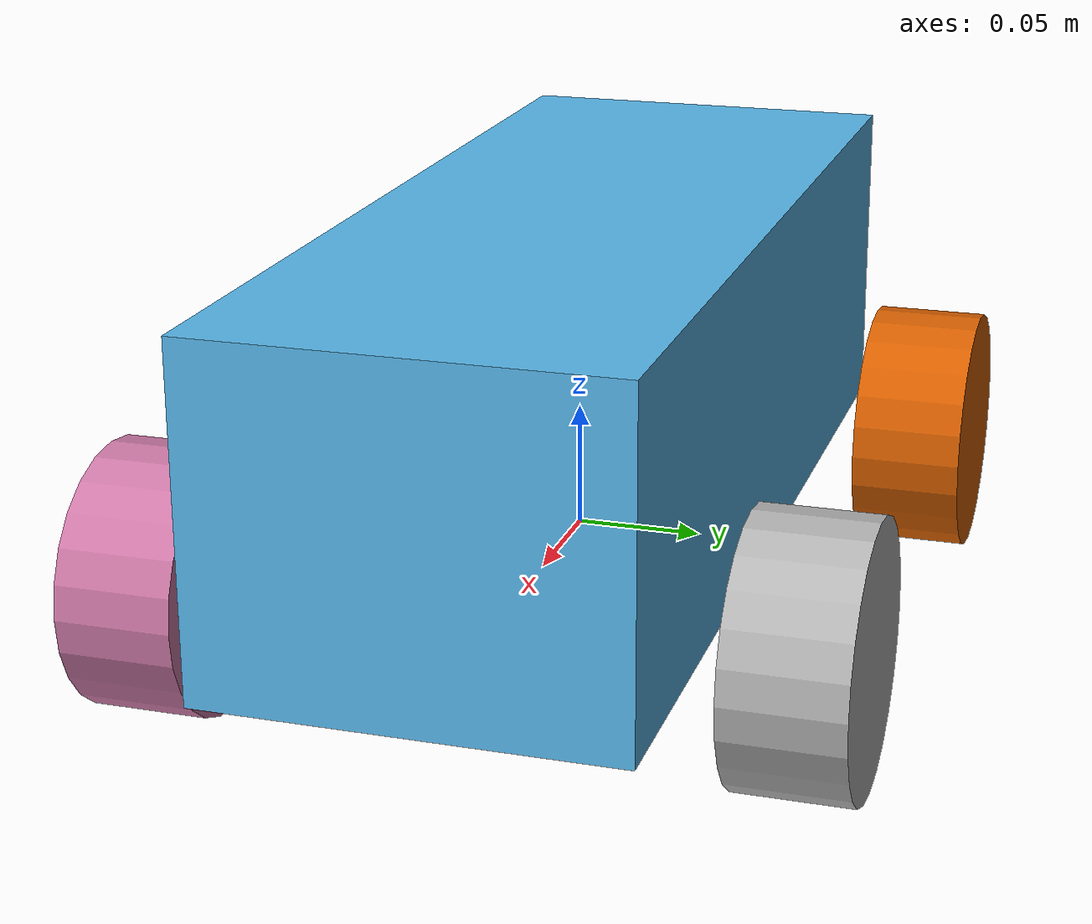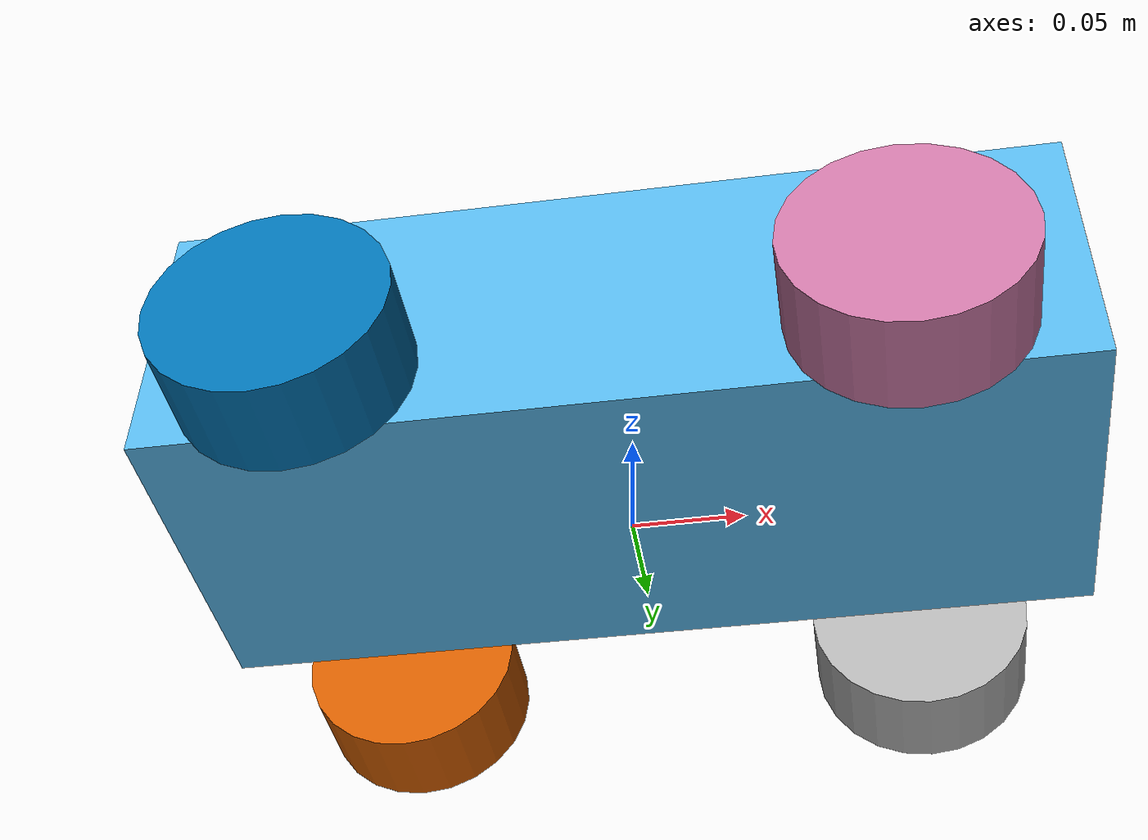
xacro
<?xml version='1.0'?>
<robot xmlns:xacro="http://www.ros.org/wiki/xacro" name="ackerman_robot">
    <xacro:property name="lx_box" value="${41/100}" /><!-- se aconseja definir porpiedades gemetricas con estas lineas -->
    <xacro:property name="ly_box" value="${16/100}" />
    <xacro:property name="lz_box" value="${13.3/100}" />

    <xacro:property name="off_x" value="${12.55/100}" />
    <xacro:property name="off_z" value="${5.45/100}" />
    <xacro:property name="off_z_chasi" value="${6.65/100}" />

    <xacro:property name="rad_cil" value="${10.2/2/100}" />
    <xacro:property name="altura" value="${4.5/100}" />
    <xacro:property name="off_y" value="${12.15/100}" />

  <xacro:macro name="wheel_macro" params="w_name w_radius w_lenght ">
    <link name="${w_name}">  <!-- este link es un cuerpo con unos atributos de visual, inercia y colision -->
        <!-- aquí vamos a definir el chassis como cuerpo, entonces la gemetría se refiere a esta pieza -->
        <visual> <!-- dentro de visual se define la geometría del objeto -->
            <geometry>
            <cylinder radius="${w_radius}" length="${w_lenght}"/> <!-- La altura de los cilindros por defecto están siempre en z, para cambiarlo generar rotación -->
            </geometry>
            <origin xyz="0 0 0" rpy="${pi/2} 0 0"/>
        </visual>

        <inertial>
          <mass value="1"/> <!-- masa objeto -->
          <origin xyz="0 0 0" rpy="0 0 0"/> <!-- centro de masa -->
          <inertia ixx="1" ixy="0" ixz="0" iyy="1" iyz="0" izz="1"/> <!-- matriz inercia -->
        </inertial>

        <collision>
            <geometry>
            <cylinder radius="${w_radius}" length="${w_lenght}"/>
            </geometry>
            <origin xyz="0 0 0" rpy="${pi/2} 0 0"/>
        </collision>
    </link>
  </xacro:macro>

    <link name="base_link"> <!-- este es un link obligatorio para ros es el sistema fijo -->
    </link>

    <joint name="base_chassis_joint" type="fixed"> <!-- este joint entiendalo como la restricción del chassis con fijo -->
        <parent link="base_link"/>
        <child link="chassis_link"/>
        <origin xyz="0 0 ${off_z_chasi} " rpy="0 0 0"/>
    </joint>

    <link name="chassis_link">  <!-- este link es un cuerpo con unos atributos de visual, inercia y colision -->
        <!-- aquí vamos a definir el chassis como cuerpo, entonces la gemetría se refiere a esta pieza -->
        <visual> <!-- dentro de visual se define la geometría del objeto -->
            <geometry>
            <box size="${lx_box} ${ly_box} ${lz_box}"/>
            </geometry>
            <origin xyz="0 0 0" rpy="0 0 0"/> <!-- posición y orientación del objeto respecto al link -->
        </visual>

        <inertial>
          <mass value="1"/> <!-- masa objeto -->
          <origin xyz="0 0 0" rpy="0 0 0"/> <!-- centro de masa -->
          <inertia ixx="1" ixy="0" ixz="0" iyy="1" iyz="0" izz="1"/> <!-- matriz inercia -->
        </inertial>

        <collision>
            <geometry>
            <box size="${lx_box} ${ly_box} ${lz_box}"/>
            </geometry>
            <origin xyz="0 0 0" rpy="0 0 0"/>
        </collision>
    </link>
    <link name="steering_FR_link">
        <visual>
            <geometry>
                <box size="0.01 0.01 0.01"/>
            </geometry>
            <origin xyz="0 0 0" rpy="0 0 0"/>
        </visual>
        <inertial>
            <mass value="0.1"/>
            <origin xyz="0 0 0" rpy="0 0 0"/>
            <inertia ixx="0.01" ixy="0" ixz="0" iyy="0.01" iyz="0" izz="0.01"/>
        </inertial>
        <collision>
            <geometry>
                <box size="0.01 0.01 0.01"/>
            </geometry>
            <origin xyz="0 0 0" rpy="0 0 0"/>
        </collision>
    </link>
    <link name="steering_FL_link">
        <visual>
            <geometry>
                <box size="0.01 0.01 0.01"/>
            </geometry>
            <origin xyz="0 0 0" rpy="0 0 0"/>
        </visual>
        <inertial>
            <mass value="0.1"/>
            <origin xyz="0 0 0" rpy="0 0 0"/>
            <inertia ixx="0.01" ixy="0" ixz="0" iyy="0.01" iyz="0" izz="0.01"/>
        </inertial>
        <collision>
            <geometry>
                <box size="0.01 0.01 0.01"/>
            </geometry>
            <origin xyz="0 0 0" rpy="0 0 0"/>
        </collision>
    </link>
    <joint name="chassis_wheel_RR_joint" type="continuous">
        <parent link="chassis_link"/>
        <child link="rwheel_link"/>
        <origin xyz="-${off_x} -${off_y} -${off_z} " rpy="0 0 0"/>
        <axis xyz="0 1 0"/> <!-- eje de rotación del joint, se define en coordenadas del link padre -->
        <limit effort="1" lower="0" upper="${2*pi}" velocity="1"/>
        <dynamics damping="1" friction="1"/>
    </joint>
    <joint name="chassis_wheel_RL_joint" type="continuous">
        <parent link="chassis_link"/>
        <child link="rwheel_link2"/>
        <origin xyz="-${off_x} ${off_y} -${off_z} " rpy="0 0 0"/>
        <axis xyz="0 1 0"/> <!-- eje de rotación del joint, se define en coordenadas del link padre -->
        <limit effort="1" lower="0" upper="${2*pi}" velocity="1"/>
        <dynamics damping="1" friction="1"/>
    </joint>
    <joint name="chassis_rotate_FR_joint" type="continuous">
        <parent link="chassis_link"/>
        <child link="steering_FR_link"/>
        <origin xyz="${off_x} -${off_y} -${off_z} " rpy="0 0 0"/>
        <axis xyz="0 0 1"/> <!-- eje de rotación del joint, se define en coordenadas del link padre -->
        <limit effort="1" lower="0" upper="${2*pi}" velocity="1"/>
        <dynamics damping="1" friction="1"/>
    </joint>
    <joint name="chassis_rotate_FL_joint" type="continuous">
        <parent link="chassis_link"/>
        <child link="steering_FL_link"/>
        <origin xyz="${off_x} ${off_y} -${off_z} " rpy="0 0 0"/>
        <axis xyz="0 0 1"/> <!-- eje de rotación del joint, se define en coordenadas del link padre -->
        <limit effort="1" lower="0" upper="${pi/2}" velocity="1"/>
        <dynamics damping="1" friction="1"/>
    </joint>
    <joint name="chassis_wheel_FR_joint" type="continuous">
        <parent link="steering_FR_link"/>
        <child link="rwheel_link3"/>
        <origin xyz="0 0 0" rpy="0 0 0"/>
        <axis xyz="0 1 0"/> <!-- eje de rotación del joint, se define en coordenadas del link padre -->
        <limit effort="1" lower="0" upper="${2*pi}" velocity="1"/>
        <dynamics damping="1" friction="1"/>
    </joint>
    <joint name="chassis_wheel_FL_joint" type="continuous">
        <parent link="steering_FL_link"/>
        <child link="rwheel_link4"/>
        <origin xyz="0 0 0" rpy="0 0 0"/>
        <axis xyz="0 1 0"/> <!-- eje de rotación del joint, se define en coordenadas del link padre -->
        <limit effort="1" lower="0" upper="${2*pi}" velocity="1"/>
        <dynamics damping="1" friction="1"/>
    </joint>

    <xacro:wheel_macro w_name="rwheel_link"
                       w_radius="${rad_cil}"
                       w_lenght="${altura}"/>
    <xacro:wheel_macro w_name="rwheel_link2"
                       w_radius="${rad_cil}"
                       w_lenght="${altura}"/>
    <xacro:wheel_macro w_name="rwheel_link3"
                       w_radius="${rad_cil}"
                       w_lenght="${altura}"/>
    <xacro:wheel_macro w_name="rwheel_link4"
                       w_radius="${rad_cil}"
                       w_lenght="${altura}"/>
</robot>
